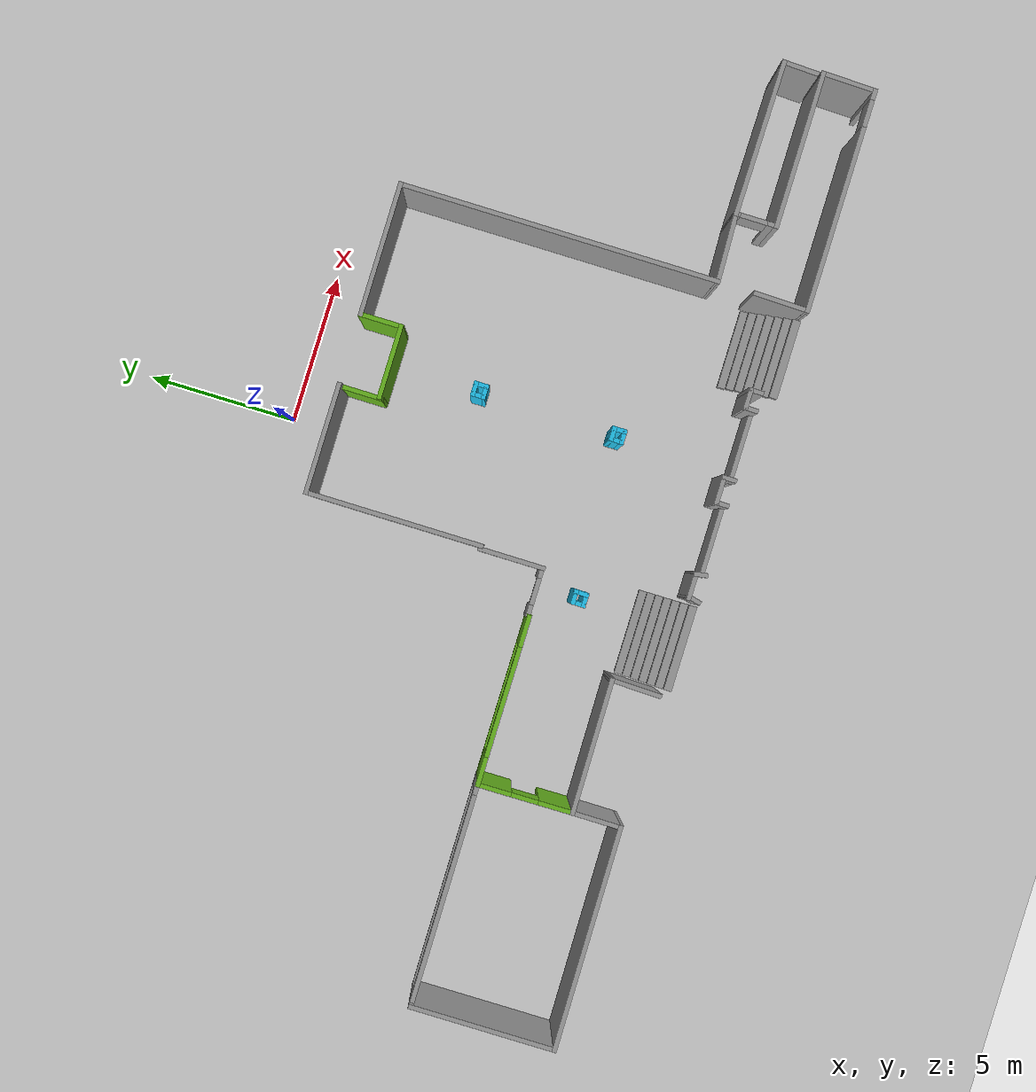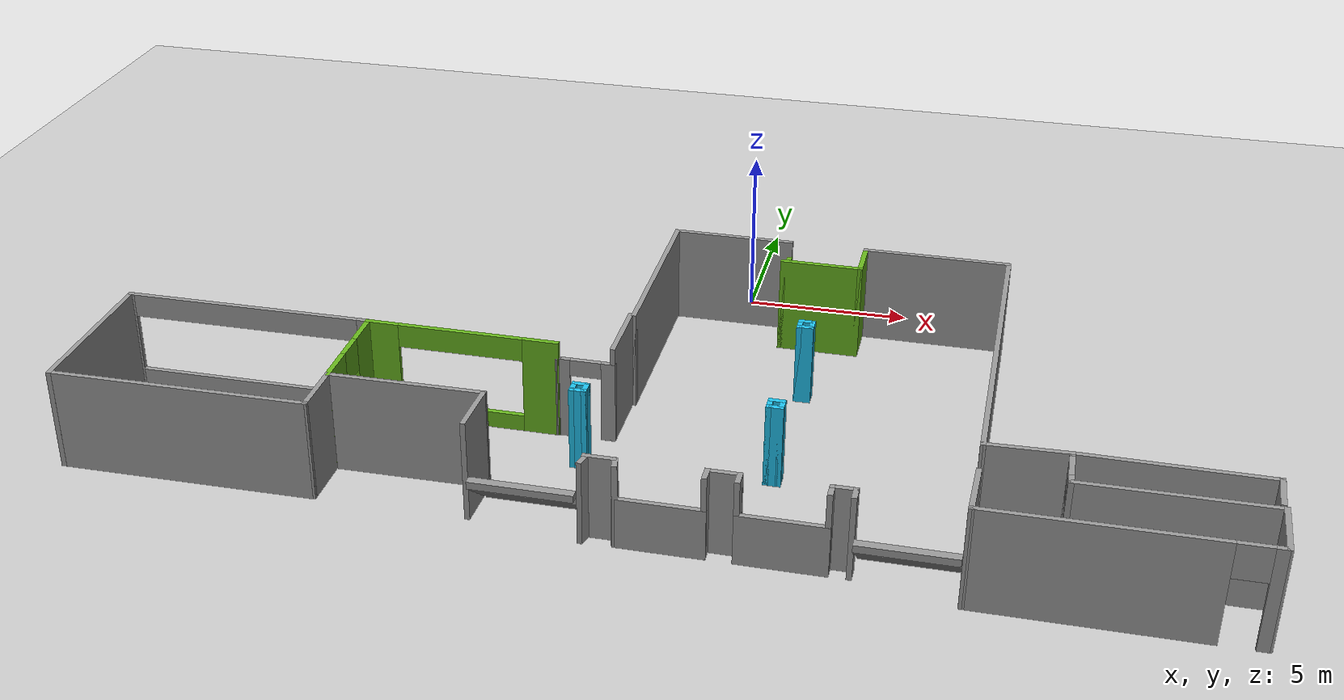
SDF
<sdf version="1.6">
 <world name="default">
  <model name="ground_plane">
   <static>1</static>
   <link name="link">
    <collision name="collision">
     <geometry><plane><normal>0 0 1</normal><size>100 100</size></plane></geometry>
     <surface><friction><ode><mu>100</mu><mu2>50</mu2></ode></friction></surface>
    </collision>
    <visual name="visual">
     <cast_shadows>0</cast_shadows>
     <geometry><plane><normal>0 0 1</normal><size>100 100</size></plane></geometry>
     <material>
      <script><uri>file://media/materials/scripts/gazebo.material</uri><name>Gazebo/Grey</name></script>
     </material>
    </visual>
   </link>
  </model>
  <model name="digilabs">
   <pose>-0.7518 -8.27015 0 0 -0 0</pose>
   <link name="Stairs_4">
    <visual name="Stairs_4_Visual_0">
     <pose>-2.7433 -4.67133 0.106857 0 -0 0</pose>
     <geometry><box><size>2.91 0.265714 0.213714</size></box></geometry>
     <material>
      <script><uri>file://media/materials/scripts/gazebo.material</uri><name>Gazebo/Grey</name></script>
      <ambient>1 1 1 1</ambient>
     </material>
     <meta><layer>0</layer></meta>
    </visual>
    <collision name="Stairs_4_Collision_0">
     <geometry><box><size>2.91 0.265714 0.213714</size></box></geometry>
     <pose>-2.7433 -4.67133 0.106857 0 -0 0</pose>
    </collision>
    <visual name="Stairs_4_Visual_1">
     <pose>-2.7433 -4.93704 0.320571 0 -0 0</pose>
     <geometry><box><size>2.91 0.265714 0.213714</size></box></geometry>
     <material>
      <script><uri>file://media/materials/scripts/gazebo.material</uri><name>Gazebo/Grey</name></script>
      <ambient>1 1 1 1</ambient>
     </material>
     <meta><layer>0</layer></meta>
    </visual>
    <collision name="Stairs_4_Collision_1">
     <geometry><box><size>2.91 0.265714 0.213714</size></box></geometry>
     <pose>-2.7433 -4.93704 0.320571 0 -0 0</pose>
    </collision>
    <visual name="Stairs_4_Visual_2">
     <pose>-2.7433 -5.20275 0.534286 0 -0 0</pose>
     <geometry><box><size>2.91 0.265714 0.213714</size></box></geometry>
     <material>
      <script><uri>file://media/materials/scripts/gazebo.material</uri><name>Gazebo/Grey</name></script>
      <ambient>1 1 1 1</ambient>
     </material>
     <meta><layer>0</layer></meta>
    </visual>
    <collision name="Stairs_4_Collision_2">
     <geometry><box><size>2.91 0.265714 0.213714</size></box></geometry>
     <pose>-2.7433 -5.20275 0.534286 0 -0 0</pose>
    </collision>
    <visual name="Stairs_4_Visual_3">
     <pose>-2.7433 -5.46847 0.748 0 -0 0</pose>
     <geometry><box><size>2.91 0.265714 0.213714</size></box></geometry>
     <material>
      <script><uri>file://media/materials/scripts/gazebo.material</uri><name>Gazebo/Grey</name></script>
      <ambient>1 1 1 1</ambient>
     </material>
     <meta><layer>0</layer></meta>
    </visual>
    <collision name="Stairs_4_Collision_3">
     <geometry><box><size>2.91 0.265714 0.213714</size></box></geometry>
     <pose>-2.7433 -5.46847 0.748 0 -0 0</pose>
    </collision>
    <visual name="Stairs_4_Visual_4">
     <pose>-2.7433 -5.73418 0.961714 0 -0 0</pose>
     <geometry><box><size>2.91 0.265714 0.213714</size></box></geometry>
     <material>
      <script><uri>file://media/materials/scripts/gazebo.material</uri><name>Gazebo/Grey</name></script>
      <ambient>1 1 1 1</ambient>
     </material>
     <meta><layer>0</layer></meta>
    </visual>
    <collision name="Stairs_4_Collision_4">
     <geometry><box><size>2.91 0.265714 0.213714</size></box></geometry>
     <pose>-2.7433 -5.73418 0.961714 0 -0 0</pose>
    </collision>
    <visual name="Stairs_4_Visual_5">
     <pose>-2.7433 -5.9999 1.17543 0 -0 0</pose>
     <geometry><box><size>2.91 0.265714 0.213714</size></box></geometry>
     <material>
      <script><uri>file://media/materials/scripts/gazebo.material</uri><name>Gazebo/Grey</name></script>
      <ambient>1 1 1 1</ambient>
     </material>
     <meta><layer>0</layer></meta>
    </visual>
    <collision name="Stairs_4_Collision_5">
     <geometry><box><size>2.91 0.265714 0.213714</size></box></geometry>
     <pose>-2.7433 -5.9999 1.17543 0 -0 0</pose>
    </collision>
    <visual name="Stairs_4_Visual_6">
     <pose>-2.7433 -6.26561 1.38914 0 -0 0</pose>
     <geometry><box><size>2.91 0.265714 0.213714</size></box></geometry>
     <material>
      <script><uri>file://media/materials/scripts/gazebo.material</uri><name>Gazebo/Grey</name></script>
      <ambient>1 1 1 1</ambient>
     </material>
     <meta><layer>0</layer></meta>
    </visual>
    <collision name="Stairs_4_Collision_6">
     <geometry><box><size>2.91 0.265714 0.213714</size></box></geometry>
     <pose>-2.7433 -6.26561 1.38914 0 -0 0</pose>
    </collision>
   </link>
   <link name="Stairs_5">
    <visual name="Stairs_5_Visual_0">
     <pose>7.35413 -5.1708 0.107143 0 -0 0</pose>
     <geometry><box><size>2.688 0.265286 0.214286</size></box></geometry>
     <material>
      <script><uri>file://media/materials/scripts/gazebo.material</uri><name>Gazebo/Grey</name></script>
      <ambient>1 1 1 1</ambient>
     </material>
     <meta><layer>0</layer></meta>
    </visual>
    <collision name="Stairs_5_Collision_0">
     <geometry><box><size>2.688 0.265286 0.214286</size></box></geometry>
     <pose>7.35413 -5.1708 0.107143 0 -0 0</pose>
    </collision>
    <visual name="Stairs_5_Visual_1">
     <pose>7.35413 -5.43608 0.321429 0 -0 0</pose>
     <geometry><box><size>2.688 0.265286 0.214286</size></box></geometry>
     <material>
      <script><uri>file://media/materials/scripts/gazebo.material</uri><name>Gazebo/Grey</name></script>
      <ambient>1 1 1 1</ambient>
     </material>
     <meta><layer>0</layer></meta>
    </visual>
    <collision name="Stairs_5_Collision_1">
     <geometry><box><size>2.688 0.265286 0.214286</size></box></geometry>
     <pose>7.35413 -5.43608 0.321429 0 -0 0</pose>
    </collision>
    <visual name="Stairs_5_Visual_2">
     <pose>7.35413 -5.70137 0.535714 0 -0 0</pose>
     <geometry><box><size>2.688 0.265286 0.214286</size></box></geometry>
     <material>
      <script><uri>file://media/materials/scripts/gazebo.material</uri><name>Gazebo/Grey</name></script>
      <ambient>1 1 1 1</ambient>
     </material>
     <meta><layer>0</layer></meta>
    </visual>
    <collision name="Stairs_5_Collision_2">
     <geometry><box><size>2.688 0.265286 0.214286</size></box></geometry>
     <pose>7.35413 -5.70137 0.535714 0 -0 0</pose>
    </collision>
    <visual name="Stairs_5_Visual_3">
     <pose>7.35413 -5.96665 0.75 0 -0 0</pose>
     <geometry><box><size>2.688 0.265286 0.214286</size></box></geometry>
     <material>
      <script><uri>file://media/materials/scripts/gazebo.material</uri><name>Gazebo/Grey</name></script>
      <ambient>1 1 1 1</ambient>
     </material>
     <meta><layer>0</layer></meta>
    </visual>
    <collision name="Stairs_5_Collision_3">
     <geometry><box><size>2.688 0.265286 0.214286</size></box></geometry>
     <pose>7.35413 -5.96665 0.75 0 -0 0</pose>
    </collision>
    <visual name="Stairs_5_Visual_4">
     <pose>7.35413 -6.23194 0.964286 0 -0 0</pose>
     <geometry><box><size>2.688 0.265286 0.214286</size></box></geometry>
     <material>
      <script><uri>file://media/materials/scripts/gazebo.material</uri><name>Gazebo/Grey</name></script>
      <ambient>1 1 1 1</ambient>
     </material>
     <meta><layer>0</layer></meta>
    </visual>
    <collision name="Stairs_5_Collision_4">
     <geometry><box><size>2.688 0.265286 0.214286</size></box></geometry>
     <pose>7.35413 -6.23194 0.964286 0 -0 0</pose>
    </collision>
    <visual name="Stairs_5_Visual_5">
     <pose>7.35413 -6.49722 1.17857 0 -0 0</pose>
     <geometry><box><size>2.688 0.265286 0.214286</size></box></geometry>
     <material>
      <script><uri>file://media/materials/scripts/gazebo.material</uri><name>Gazebo/Grey</name></script>
      <ambient>1 1 1 1</ambient>
     </material>
     <meta><layer>0</layer></meta>
    </visual>
    <collision name="Stairs_5_Collision_5">
     <geometry><box><size>2.688 0.265286 0.214286</size></box></geometry>
     <pose>7.35413 -6.49722 1.17857 0 -0 0</pose>
    </collision>
    <visual name="Stairs_5_Visual_6">
     <pose>7.35413 -6.76251 1.39286 0 -0 0</pose>
     <geometry><box><size>2.688 0.265286 0.214286</size></box></geometry>
     <material>
      <script><uri>file://media/materials/scripts/gazebo.material</uri><name>Gazebo/Grey</name></script>
      <ambient>1 1 1 1</ambient>
     </material>
     <meta><layer>0</layer></meta>
    </visual>
    <collision name="Stairs_5_Collision_6">
     <geometry><box><size>2.688 0.265286 0.214286</size></box></geometry>
     <pose>7.35413 -6.76251 1.39286 0 -0 0</pose>
    </collision>
   </link>
   <link name="Wall_0">
    <collision name="Wall_0_Collision">
     <geometry><box><size>3.75 0.15 3</size></box></geometry>
     <pose>0 0 1.5 0 -0 0</pose>
    </collision>
    <visual name="Wall_0_Visual">
     <pose>0 0 1.5 0 -0 0</pose>
     <geometry><box><size>3.75 0.15 3</size></box></geometry>
     <material>
      <script><uri>file://media/materials/scripts/gazebo.material</uri><name>Gazebo/Grey</name></script>
      <ambient>1 1 1 1</ambient>
     </material>
     <meta><layer>0</layer></meta>
    </visual>
    <pose>0.3518 6.82015 0 0 -0 0</pose>
   </link>
   <link name="Wall_1">
    <collision name="Wall_1_Collision">
     <geometry><box><size>1.5 0.15 2.5</size></box></geometry>
     <pose>0 0 1.25 0 -0 0</pose>
    </collision>
    <visual name="Wall_1_Visual">
     <pose>0 0 1.25 0 -0 0</pose>
     <geometry><box><size>1.5 0.15 2.5</size></box></geometry>
     <material>
      <script><uri>file://media/materials/scripts/gazebo.material</uri><name>Gazebo/Grey</name></script>
      <ambient>0.403922 0.709804 0.113725 1</ambient>
     </material>
     <meta><layer>0</layer></meta>
    </visual>
    <pose>2.1518 6.14515 0 0 0 -1.5708</pose>
   </link>
   <link name="Wall_10">
    <pose>-2.3482 -1.12985 0 0 -0 3.14159</pose>
    <visual name="Wall_10_Visual_0">
     <pose>-0.667497 0 1.25 0 -0 0</pose>
     <geometry><box><size>0.415005 0.15 2.5</size></box></geometry>
     <material>
      <script><uri>file://media/materials/scripts/gazebo.material</uri><name>Gazebo/Grey</name></script>
      <ambient>1 1 1 1</ambient>
     </material>
     <meta><layer>0</layer></meta>
    </visual>
    <collision name="Wall_10_Collision_0">
     <geometry><box><size>0.415005 0.15 2.5</size></box></geometry>
     <pose>-0.667497 0 1.25 0 -0 0</pose>
    </collision>
    <visual name="Wall_10_Visual_1">
     <pose>0.657503 0 1.25 0 -0 0</pose>
     <geometry><box><size>0.434995 0.15 2.5</size></box></geometry>
     <material>
      <script><uri>file://media/materials/scripts/gazebo.material</uri><name>Gazebo/Grey</name></script>
      <ambient>1 1 1 1</ambient>
     </material>
     <meta><layer>0</layer></meta>
    </visual>
    <collision name="Wall_10_Collision_1">
     <geometry><box><size>0.434995 0.15 2.5</size></box></geometry>
     <pose>0.657503 0 1.25 0 -0 0</pose>
    </collision>
    <visual name="Wall_10_Visual_2">
     <pose>-0.009995 0 2.25 0 -0 0</pose>
     <geometry><box><size>0.9 0.15 0.5</size></box></geometry>
     <material>
      <script><uri>file://media/materials/scripts/gazebo.material</uri><name>Gazebo/Grey</name></script>
      <ambient>1 1 1 1</ambient>
     </material>
     <meta><layer>0</layer></meta>
    </visual>
    <collision name="Wall_10_Collision_2">
     <geometry><box><size>0.9 0.15 0.5</size></box></geometry>
     <pose>-0.009995 0 2.25 0 -0 0</pose>
    </collision>
   </link>
   <link name="Wall_11">
    <collision name="Wall_11_Collision">
     <geometry><box><size>0.19801 0.15 2.5</size></box></geometry>
     <pose>0 0 1.25 0 -0 0</pose>
    </collision>
    <visual name="Wall_11_Visual">
     <pose>0 0 1.25 0 -0 0</pose>
     <geometry><box><size>0.19801 0.15 2.5</size></box></geometry>
     <material>
      <script><uri>file://media/materials/scripts/gazebo.material</uri><name>Gazebo/Grey</name></script>
      <ambient>1 1 1 1</ambient>
     </material>
     <meta><layer>0</layer></meta>
    </visual>
    <pose>-3.1622 -1.14935 0 0 0 -2.19347</pose>
   </link>
   <link name="Wall_12">
    <pose>-5.9762 -1.16885 0 0 -0 3.14159</pose>
    <visual name="Wall_12_Visual_0">
     <pose>-2.34011 0 1.5 0 -0 0</pose>
     <geometry><box><size>1.06978 0.15 3</size></box></geometry>
     <material>
      <script><uri>file://media/materials/scripts/gazebo.material</uri><name>Gazebo/Grey</name></script>
      <ambient>0.403922 0.709804 0.113725 1</ambient>
     </material>
     <meta><layer>0</layer></meta>
    </visual>
    <collision name="Wall_12_Collision_0">
     <geometry><box><size>1.06978 0.15 3</size></box></geometry>
     <pose>-2.34011 0 1.5 0 -0 0</pose>
    </collision>
    <visual name="Wall_12_Visual_1">
     <pose>0.534892 0 0.25 0 -0 0</pose>
     <geometry><box><size>4.68022 0.15 0.5</size></box></geometry>
     <material>
      <script><uri>file://media/materials/scripts/gazebo.material</uri><name>Gazebo/Grey</name></script>
      <ambient>0.403922 0.709804 0.113725 1</ambient>
     </material>
     <meta><layer>0</layer></meta>
    </visual>
    <collision name="Wall_12_Collision_1">
     <geometry><box><size>4.68022 0.15 0.5</size></box></geometry>
     <pose>0.534892 0 0.25 0 -0 0</pose>
    </collision>
    <visual name="Wall_12_Visual_2">
     <pose>2.37639 0 1.75 0 -0 0</pose>
     <geometry><box><size>0.997216 0.15 2.5</size></box></geometry>
     <material>
      <script><uri>file://media/materials/scripts/gazebo.material</uri><name>Gazebo/Grey</name></script>
      <ambient>0.403922 0.709804 0.113725 1</ambient>
     </material>
     <meta><layer>0</layer></meta>
    </visual>
    <collision name="Wall_12_Collision_2">
     <geometry><box><size>0.997216 0.15 2.5</size></box></geometry>
     <pose>2.37639 0 1.75 0 -0 0</pose>
    </collision>
    <visual name="Wall_12_Visual_3">
     <pose>0.036284 0 2.65 0 -0 0</pose>
     <geometry><box><size>3.683 0.15 0.7</size></box></geometry>
     <material>
      <script><uri>file://media/materials/scripts/gazebo.material</uri><name>Gazebo/Grey</name></script>
      <ambient>0.403922 0.709804 0.113725 1</ambient>
     </material>
     <meta><layer>0</layer></meta>
    </visual>
    <collision name="Wall_12_Collision_3">
     <geometry><box><size>3.683 0.15 0.7</size></box></geometry>
     <pose>0.036284 0 2.65 0 -0 0</pose>
    </collision>
   </link>
   <link name="Wall_13">
    <pose>-8.7622 -2.74935 0 0 0 -1.56194</pose>
    <visual name="Wall_13_Visual_0">
     <pose>-1.06319 0 1.5 0 -0 0</pose>
     <geometry><box><size>1.18475 0.15 3</size></box></geometry>
     <material>
      <script><uri>file://media/materials/scripts/gazebo.material</uri><name>Gazebo/Grey</name></script>
      <ambient>0.403922 0.709804 0.113725 1</ambient>
     </material>
     <meta><layer>0</layer></meta>
    </visual>
    <collision name="Wall_13_Collision_0">
     <geometry><box><size>1.18475 0.15 3</size></box></geometry>
     <pose>-1.06319 0 1.5 0 -0 0</pose>
    </collision>
    <visual name="Wall_13_Visual_1">
     <pose>1.04238 0 1.5 0 -0 0</pose>
     <geometry><box><size>1.22637 0.15 3</size></box></geometry>
     <material>
      <script><uri>file://media/materials/scripts/gazebo.material</uri><name>Gazebo/Grey</name></script>
      <ambient>0.403922 0.709804 0.113725 1</ambient>
     </material>
     <meta><layer>0</layer></meta>
    </visual>
    <collision name="Wall_13_Collision_1">
     <geometry><box><size>1.22637 0.15 3</size></box></geometry>
     <pose>1.04238 0 1.5 0 -0 0</pose>
    </collision>
    <visual name="Wall_13_Visual_2">
     <pose>-0.020809 0 2.5 0 -0 0</pose>
     <geometry><box><size>0.9 0.15 1</size></box></geometry>
     <material>
      <script><uri>file://media/materials/scripts/gazebo.material</uri><name>Gazebo/Grey</name></script>
      <ambient>0.403922 0.709804 0.113725 1</ambient>
     </material>
     <meta><layer>0</layer></meta>
    </visual>
    <collision name="Wall_13_Collision_2">
     <geometry><box><size>0.9 0.15 1</size></box></geometry>
     <pose>-0.020809 0 2.5 0 -0 0</pose>
    </collision>
   </link>
   <link name="Wall_14">
    <collision name="Wall_14_Collision">
     <geometry><box><size>4.57641 0.15 3</size></box></geometry>
     <pose>0 0 1.5 0 -0 0</pose>
    </collision>
    <visual name="Wall_14_Visual">
     <pose>0 0 1.5 0 -0 0</pose>
     <geometry><box><size>4.57641 0.15 3</size></box></geometry>
     <material>
      <script><uri>file://media/materials/scripts/gazebo.material</uri><name>Gazebo/Grey</name></script>
      <ambient>1 1 1 1</ambient>
     </material>
     <meta><layer>0</layer></meta>
    </visual>
    <pose>-6.5352 -4.30885 0 0 -0 0.009489</pose>
   </link>
   <link name="Wall_15">
    <collision name="Wall_15_Collision">
     <geometry><box><size>1.75 0.15 3</size></box></geometry>
     <pose>0 0 1.5 0 -0 0</pose>
    </collision>
    <visual name="Wall_15_Visual">
     <pose>0 0 1.5 0 -0 0</pose>
     <geometry><box><size>1.75 0.15 3</size></box></geometry>
     <material>
      <script><uri>file://media/materials/scripts/gazebo.material</uri><name>Gazebo/Grey</name></script>
      <ambient>1 1 1 1</ambient>
     </material>
     <meta><layer>0</layer></meta>
    </visual>
    <pose>-4.3432 -5.08785 0 0 0 -1.59704</pose>
   </link>
   <link name="Wall_18">
    <collision name="Wall_18_Collision">
     <geometry><box><size>1.88877 0.15 3</size></box></geometry>
     <pose>0 0 1.5 0 -0 0</pose>
    </collision>
    <visual name="Wall_18_Visual">
     <pose>0 0 1.5 0 -0 0</pose>
     <geometry><box><size>1.88877 0.15 3</size></box></geometry>
     <material>
      <script><uri>file://media/materials/scripts/gazebo.material</uri><name>Gazebo/Grey</name></script>
      <ambient>1 1 1 1</ambient>
     </material>
     <meta><layer>0</layer></meta>
    </visual>
    <pose>8.8143 -5.92335 0 0 0 -1.59667</pose>
   </link>
   <link name="Wall_19">
    <pose>12.4668 -6.79285 0 0 -0 0</pose>
    <visual name="Wall_19_Visual_0">
     <pose>-0.640973 0 1.5 0 -0 0</pose>
     <geometry><box><size>6.21805 0.15 3</size></box></geometry>
     <material>
      <script><uri>file://media/materials/scripts/gazebo.material</uri><name>Gazebo/Grey</name></script>
      <ambient>1 1 1 1</ambient>
     </material>
     <meta><layer>0</layer></meta>
    </visual>
    <collision name="Wall_19_Collision_0">
     <geometry><box><size>6.21805 0.15 3</size></box></geometry>
     <pose>-0.640973 0 1.5 0 -0 0</pose>
    </collision>
    <visual name="Wall_19_Visual_1">
     <pose>3.55903 0 1.5 0 -0 0</pose>
     <geometry><box><size>0.381945 0.15 3</size></box></geometry>
     <material>
      <script><uri>file://media/materials/scripts/gazebo.material</uri><name>Gazebo/Grey</name></script>
      <ambient>1 1 1 1</ambient>
     </material>
     <meta><layer>0</layer></meta>
    </visual>
    <collision name="Wall_19_Collision_1">
     <geometry><box><size>0.381945 0.15 3</size></box></geometry>
     <pose>3.55903 0 1.5 0 -0 0</pose>
    </collision>
    <visual name="Wall_19_Visual_2">
     <pose>2.91805 0 2.5 0 -0 0</pose>
     <geometry><box><size>0.9 0.15 1</size></box></geometry>
     <material>
      <script><uri>file://media/materials/scripts/gazebo.material</uri><name>Gazebo/Grey</name></script>
      <ambient>1 1 1 1</ambient>
     </material>
     <meta><layer>0</layer></meta>
    </visual>
    <collision name="Wall_19_Collision_2">
     <geometry><box><size>0.9 0.15 1</size></box></geometry>
     <pose>2.91805 0 2.5 0 -0 0</pose>
    </collision>
   </link>
   <link name="Wall_2">
    <collision name="Wall_2_Collision">
     <geometry><box><size>2.5 0.15 3</size></box></geometry>
     <pose>0 0 1.5 0 -0 0</pose>
    </collision>
    <visual name="Wall_2_Visual">
     <pose>0 0 1.5 0 -0 0</pose>
     <geometry><box><size>2.5 0.15 3</size></box></geometry>
     <material>
      <script><uri>file://media/materials/scripts/gazebo.material</uri><name>Gazebo/Grey</name></script>
      <ambient>0.403922 0.709804 0.113725 1</ambient>
     </material>
     <meta><layer>0</layer></meta>
    </visual>
    <pose>3.3268 5.47015 0 0 -0 0</pose>
   </link>
   <link name="Wall_20">
    <collision name="Wall_20_Collision">
     <geometry><box><size>1.88877 0.15 3</size></box></geometry>
     <pose>0 0 1.5 0 -0 0</pose>
    </collision>
    <visual name="Wall_20_Visual">
     <pose>0 0 1.5 0 -0 0</pose>
     <geometry><box><size>1.88877 0.15 3</size></box></geometry>
     <material>
      <script><uri>file://media/materials/scripts/gazebo.material</uri><name>Gazebo/Grey</name></script>
      <ambient>1 1 1 1</ambient>
     </material>
     <meta><layer>0</layer></meta>
    </visual>
    <pose>16.1643 -5.92335 0 0 -0 1.54493</pose>
   </link>
   <link name="Wall_21">
    <collision name="Wall_21_Collision">
     <geometry><box><size>5.25 0.15 3</size></box></geometry>
     <pose>0 0 1.5 0 -0 0</pose>
    </collision>
    <visual name="Wall_21_Visual">
     <pose>0 0 1.5 0 -0 0</pose>
     <geometry><box><size>5.25 0.15 3</size></box></geometry>
     <material>
      <script><uri>file://media/materials/scripts/gazebo.material</uri><name>Gazebo/Grey</name></script>
      <ambient>1 1 1 1</ambient>
     </material>
     <meta><layer>0</layer></meta>
    </visual>
    <pose>13.6368 -5.05385 0 0 -0 3.14159</pose>
   </link>
   <link name="Wall_22">
    <pose>11.0868 -4.37885 0 0 -0 1.5708</pose>
    <visual name="Wall_22_Visual_0">
     <pose>-0.560049 0 1.5 0 -0 0</pose>
     <geometry><box><size>0.379903 0.15 3</size></box></geometry>
     <material>
      <script><uri>file://media/materials/scripts/gazebo.material</uri><name>Gazebo/Grey</name></script>
      <ambient>1 1 1 1</ambient>
     </material>
     <meta><layer>0</layer></meta>
    </visual>
    <collision name="Wall_22_Collision_0">
     <geometry><box><size>0.379903 0.15 3</size></box></geometry>
     <pose>-0.560049 0 1.5 0 -0 0</pose>
    </collision>
    <visual name="Wall_22_Visual_1">
     <pose>0.639951 0 1.5 0 -0 0</pose>
     <geometry><box><size>0.220097 0.15 3</size></box></geometry>
     <material>
      <script><uri>file://media/materials/scripts/gazebo.material</uri><name>Gazebo/Grey</name></script>
      <ambient>1 1 1 1</ambient>
     </material>
     <meta><layer>0</layer></meta>
    </visual>
    <collision name="Wall_22_Collision_1">
     <geometry><box><size>0.220097 0.15 3</size></box></geometry>
     <pose>0.639951 0 1.5 0 -0 0</pose>
    </collision>
    <visual name="Wall_22_Visual_2">
     <pose>0.079903 0 2.5 0 -0 0</pose>
     <geometry><box><size>0.9 0.15 1</size></box></geometry>
     <material>
      <script><uri>file://media/materials/scripts/gazebo.material</uri><name>Gazebo/Grey</name></script>
      <ambient>1 1 1 1</ambient>
     </material>
     <meta><layer>0</layer></meta>
    </visual>
    <collision name="Wall_22_Collision_2">
     <geometry><box><size>0.9 0.15 1</size></box></geometry>
     <pose>0.079903 0 2.5 0 -0 0</pose>
    </collision>
   </link>
   <link name="Wall_23">
    <collision name="Wall_23_Collision">
     <geometry><box><size>5.22834 0.15 3</size></box></geometry>
     <pose>0 0 1.5 0 -0 0</pose>
    </collision>
    <visual name="Wall_23_Visual">
     <pose>0 0 1.5 0 -0 0</pose>
     <geometry><box><size>5.22834 0.15 3</size></box></geometry>
     <material>
      <script><uri>file://media/materials/scripts/gazebo.material</uri><name>Gazebo/Grey</name></script>
      <ambient>1 1 1 1</ambient>
     </material>
     <meta><layer>0</layer></meta>
    </visual>
    <pose>13.6258 -3.72685 0 0 0 -0.009058</pose>
   </link>
   <link name="Wall_24">
    <collision name="Wall_24_Collision">
     <geometry><box><size>1.25 0.15 3</size></box></geometry>
     <pose>0 0 1.5 0 -0 0</pose>
    </collision>
    <visual name="Wall_24_Visual">
     <pose>0 0 1.5 0 -0 0</pose>
     <geometry><box><size>1.25 0.15 3</size></box></geometry>
     <material>
      <script><uri>file://media/materials/scripts/gazebo.material</uri><name>Gazebo/Grey</name></script>
      <ambient>1 1 1 1</ambient>
     </material>
     <meta><layer>0</layer></meta>
    </visual>
    <pose>16.1423 -4.29985 0 0 0 -1.61168</pose>
   </link>
   <link name="Wall_26">
    <collision name="Wall_26_Collision">
     <geometry><box><size>2.38646 0.15 3</size></box></geometry>
     <pose>0 0 1.5 0 -0 0</pose>
    </collision>
    <visual name="Wall_26_Visual">
     <pose>0 0 1.5 0 -0 0</pose>
     <geometry><box><size>2.38646 0.15 3</size></box></geometry>
     <material>
      <script><uri>file://media/materials/scripts/gazebo.material</uri><name>Gazebo/Grey</name></script>
      <ambient>1 1 1 1</ambient>
     </material>
     <meta><layer>0</layer></meta>
    </visual>
    <pose>9.9693 -3.74185 0 0 0 -3.1076</pose>
   </link>
   <link name="Wall_28">
    <collision name="Wall_28_Collision">
     <geometry><box><size>0.75 0.15 2.5</size></box></geometry>
     <pose>0 0 1.25 0 -0 0</pose>
    </collision>
    <visual name="Wall_28_Visual">
     <pose>0 0 1.25 0 -0 0</pose>
     <geometry><box><size>0.75 0.15 2.5</size></box></geometry>
     <material>
      <script><uri>file://media/materials/scripts/gazebo.material</uri><name>Gazebo/Grey</name></script>
      <ambient>1 1 1 1</ambient>
     </material>
     <meta><layer>0</layer></meta>
    </visual>
    <pose>5.6169 -5.8754 0 0 -0 3.14159</pose>
   </link>
   <link name="Wall_3">
    <collision name="Wall_3_Collision">
     <geometry><box><size>1.5 0.15 3</size></box></geometry>
     <pose>0 0 1.5 0 -0 0</pose>
    </collision>
    <visual name="Wall_3_Visual">
     <pose>0 0 1.5 0 -0 0</pose>
     <geometry><box><size>1.5 0.15 3</size></box></geometry>
     <material>
      <script><uri>file://media/materials/scripts/gazebo.material</uri><name>Gazebo/Grey</name></script>
      <ambient>0.403922 0.709804 0.113725 1</ambient>
     </material>
     <meta><layer>0</layer></meta>
    </visual>
    <pose>4.5018 6.14515 0 0 -0 1.5708</pose>
   </link>
   <link name="Wall_4">
    <collision name="Wall_4_Collision">
     <geometry><box><size>4.5 0.15 3</size></box></geometry>
     <pose>0 0 1.5 0 -0 0</pose>
    </collision>
    <visual name="Wall_4_Visual">
     <pose>0 0 1.5 0 -0 0</pose>
     <geometry><box><size>4.5 0.15 3</size></box></geometry>
     <material>
      <script><uri>file://media/materials/scripts/gazebo.material</uri><name>Gazebo/Grey</name></script>
      <ambient>1 1 1 1</ambient>
     </material>
     <meta><layer>0</layer></meta>
    </visual>
    <pose>6.6768 6.82015 0 0 -0 0</pose>
   </link>
   <link name="Wall_42">
    <collision name="Wall_42_Collision">
     <geometry><box><size>0.5 0.15 2.5</size></box></geometry>
     <pose>0 0 1.25 0 -0 0</pose>
    </collision>
    <visual name="Wall_42_Visual">
     <pose>0 0 1.25 0 -0 0</pose>
     <geometry><box><size>0.5 0.15 2.5</size></box></geometry>
     <material>
      <script><uri>file://media/materials/scripts/gazebo.material</uri><name>Gazebo/Grey</name></script>
      <ambient>0.121569 0.764706 0.92549 1</ambient>
     </material>
     <meta><layer>0</layer></meta>
    </visual>
    <pose>3.34428 2.66264 0 0 -0 0</pose>
   </link>
   <link name="Wall_43">
    <collision name="Wall_43_Collision">
     <geometry><box><size>0.5 0.15 2.5</size></box></geometry>
     <pose>0 0 1.25 0 -0 0</pose>
    </collision>
    <visual name="Wall_43_Visual">
     <pose>0 0 1.25 0 -0 0</pose>
     <geometry><box><size>0.5 0.15 2.5</size></box></geometry>
     <material>
      <script><uri>file://media/materials/scripts/gazebo.material</uri><name>Gazebo/Grey</name></script>
      <ambient>0.12549 0.764706 0.941176 1</ambient>
     </material>
     <meta><layer>0</layer></meta>
    </visual>
    <pose>3.51928 2.48764 0 0 0 -1.5708</pose>
   </link>
   <link name="Wall_44">
    <collision name="Wall_44_Collision">
     <geometry><box><size>0.5 0.15 2.5</size></box></geometry>
     <pose>0 0 1.25 0 -0 0</pose>
    </collision>
    <visual name="Wall_44_Visual">
     <pose>0 0 1.25 0 -0 0</pose>
     <geometry><box><size>0.5 0.15 2.5</size></box></geometry>
     <material>
      <script><uri>file://media/materials/scripts/gazebo.material</uri><name>Gazebo/Grey</name></script>
      <ambient>0.12549 0.764706 0.941176 1</ambient>
     </material>
     <meta><layer>0</layer></meta>
    </visual>
    <pose>3.34428 2.31264 0 0 -0 3.14159</pose>
   </link>
   <link name="Wall_45">
    <collision name="Wall_45_Collision">
     <geometry><box><size>0.5 0.15 2.5</size></box></geometry>
     <pose>0 0 1.25 0 -0 0</pose>
    </collision>
    <visual name="Wall_45_Visual">
     <pose>0 0 1.25 0 -0 0</pose>
     <geometry><box><size>0.5 0.15 2.5</size></box></geometry>
     <material>
      <script><uri>file://media/materials/scripts/gazebo.material</uri><name>Gazebo/Grey</name></script>
      <ambient>0.12549 0.764706 0.941176 1</ambient>
     </material>
     <meta><layer>0</layer></meta>
    </visual>
    <pose>3.16928 2.48764 0 0 -0 1.5708</pose>
   </link>
   <link name="Wall_47">
    <collision name="Wall_47_Collision">
     <geometry><box><size>0.5 0.15 2.5</size></box></geometry>
     <pose>0 0 1.25 0 -0 0</pose>
    </collision>
    <visual name="Wall_47_Visual">
     <pose>0 0 1.25 0 -0 0</pose>
     <geometry><box><size>0.5 0.15 2.5</size></box></geometry>
     <material>
      <script><uri>file://media/materials/scripts/gazebo.material</uri><name>Gazebo/Grey</name></script>
      <ambient>0.121569 0.764706 0.92549 1</ambient>
     </material>
     <meta><layer>0</layer></meta>
    </visual>
    <pose>3.25948 -2.02947 0 0 -0 0</pose>
   </link>
   <link name="Wall_48">
    <collision name="Wall_48_Collision">
     <geometry><box><size>0.5 0.15 2.5</size></box></geometry>
     <pose>0 0 1.25 0 -0 0</pose>
    </collision>
    <visual name="Wall_48_Visual">
     <pose>0 0 1.25 0 -0 0</pose>
     <geometry><box><size>0.5 0.15 2.5</size></box></geometry>
     <material>
      <script><uri>file://media/materials/scripts/gazebo.material</uri><name>Gazebo/Grey</name></script>
      <ambient>0.12549 0.764706 0.941176 1</ambient>
     </material>
     <meta><layer>0</layer></meta>
    </visual>
    <pose>3.43448 -2.20447 0 0 0 -1.5708</pose>
   </link>
   <link name="Wall_49">
    <collision name="Wall_49_Collision">
     <geometry><box><size>0.5 0.15 2.5</size></box></geometry>
     <pose>0 0 1.25 0 -0 0</pose>
    </collision>
    <visual name="Wall_49_Visual">
     <pose>0 0 1.25 0 -0 0</pose>
     <geometry><box><size>0.5 0.15 2.5</size></box></geometry>
     <material>
      <script><uri>file://media/materials/scripts/gazebo.material</uri><name>Gazebo/Grey</name></script>
      <ambient>0.12549 0.764706 0.941176 1</ambient>
     </material>
     <meta><layer>0</layer></meta>
    </visual>
    <pose>3.25948 -2.37947 0 0 -0 3.14159</pose>
   </link>
   <link name="Wall_5">
    <collision name="Wall_5_Collision">
     <geometry><box><size>10.75 0.15 3</size></box></geometry>
     <pose>0 0 1.5 0 -0 0</pose>
    </collision>
    <visual name="Wall_5_Visual">
     <pose>0 0 1.5 0 -0 0</pose>
     <geometry><box><size>10.75 0.15 3</size></box></geometry>
     <material>
      <script><uri>file://media/materials/scripts/gazebo.material</uri><name>Gazebo/Grey</name></script>
      <ambient>1 1 1 1</ambient>
     </material>
     <meta><layer>0</layer></meta>
    </visual>
    <pose>8.8518 1.52015 0 0 0 -1.5708</pose>
   </link>
   <link name="Wall_50">
    <collision name="Wall_50_Collision">
     <geometry><box><size>0.5 0.15 2.5</size></box></geometry>
     <pose>0 0 1.25 0 -0 0</pose>
    </collision>
    <visual name="Wall_50_Visual">
     <pose>0 0 1.25 0 -0 0</pose>
     <geometry><box><size>0.5 0.15 2.5</size></box></geometry>
     <material>
      <script><uri>file://media/materials/scripts/gazebo.material</uri><name>Gazebo/Grey</name></script>
      <ambient>0.121569 0.764706 0.92549 1</ambient>
     </material>
     <meta><layer>0</layer></meta>
    </visual>
    <pose>3.08448 -2.20447 0 0 -0 1.5708</pose>
   </link>
   <link name="Wall_52">
    <collision name="Wall_52_Collision">
     <geometry><box><size>0.5 0.15 2.5</size></box></geometry>
     <pose>0 0 1.25 0 -0 0</pose>
    </collision>
    <visual name="Wall_52_Visual">
     <pose>0 0 1.25 0 -0 0</pose>
     <geometry><box><size>0.5 0.15 2.5</size></box></geometry>
     <material>
      <script><uri>file://media/materials/scripts/gazebo.material</uri><name>Gazebo/Grey</name></script>
      <ambient>0.121569 0.764706 0.92549 1</ambient>
     </material>
     <meta><layer>0</layer></meta>
    </visual>
    <pose>-2.13927 -2.39692 0 0 -0 0</pose>
   </link>
   <link name="Wall_53">
    <collision name="Wall_53_Collision">
     <geometry><box><size>0.5 0.15 2.5</size></box></geometry>
     <pose>0 0 1.25 0 -0 0</pose>
    </collision>
    <visual name="Wall_53_Visual">
     <pose>0 0 1.25 0 -0 0</pose>
     <geometry><box><size>0.5 0.15 2.5</size></box></geometry>
     <material>
      <script><uri>file://media/materials/scripts/gazebo.material</uri><name>Gazebo/Grey</name></script>
      <ambient>0.12549 0.764706 0.941176 1</ambient>
     </material>
     <meta><layer>0</layer></meta>
    </visual>
    <pose>-1.96427 -2.57192 0 0 0 -1.5708</pose>
   </link>
   <link name="Wall_54">
    <collision name="Wall_54_Collision">
     <geometry><box><size>0.5 0.15 2.5</size></box></geometry>
     <pose>0 0 1.25 0 -0 0</pose>
    </collision>
    <visual name="Wall_54_Visual">
     <pose>0 0 1.25 0 -0 0</pose>
     <geometry><box><size>0.5 0.15 2.5</size></box></geometry>
     <material>
      <script><uri>file://media/materials/scripts/gazebo.material</uri><name>Gazebo/Grey</name></script>
      <ambient>0.12549 0.764706 0.941176 1</ambient>
     </material>
     <meta><layer>0</layer></meta>
    </visual>
    <pose>-2.13927 -2.74692 0 0 -0 3.14159</pose>
   </link>
   <link name="Wall_55">
    <collision name="Wall_55_Collision">
     <geometry><box><size>0.5 0.15 2.5</size></box></geometry>
     <pose>0 0 1.25 0 -0 0</pose>
    </collision>
    <visual name="Wall_55_Visual">
     <pose>0 0 1.25 0 -0 0</pose>
     <geometry><box><size>0.5 0.15 2.5</size></box></geometry>
     <material>
      <script><uri>file://media/materials/scripts/gazebo.material</uri><name>Gazebo/Grey</name></script>
      <ambient>0.121569 0.764706 0.92549 1</ambient>
     </material>
     <meta><layer>0</layer></meta>
    </visual>
    <pose>-2.31427 -2.57192 0 0 -0 1.5708</pose>
   </link>
   <link name="Wall_61">
    <collision name="Wall_61_Collision">
     <geometry><box><size>1.75 0.15 3</size></box></geometry>
     <pose>0 0 1.5 0 -0 0</pose>
    </collision>
    <visual name="Wall_61_Visual">
     <pose>0 0 1.5 0 -0 0</pose>
     <geometry><box><size>1.75 0.15 3</size></box></geometry>
     <material>
      <script><uri>file://media/materials/scripts/gazebo.material</uri><name>Gazebo/Grey</name></script>
      <ambient>1 1 1 1</ambient>
     </material>
     <meta><layer>0</layer></meta>
    </visual>
    <pose>-8.7482 -5.12985 0 0 0 -1.5708</pose>
   </link>
   <link name="Wall_62">
    <collision name="Wall_62_Collision">
     <geometry><box><size>7.56279 0.15 3</size></box></geometry>
     <pose>0 0 1.5 0 -0 0</pose>
    </collision>
    <visual name="Wall_62_Visual">
     <pose>0 0 1.5 0 -0 0</pose>
     <geometry><box><size>7.56279 0.15 3</size></box></geometry>
     <material>
      <script><uri>file://media/materials/scripts/gazebo.material</uri><name>Gazebo/Grey</name></script>
      <ambient>1 1 1 1</ambient>
     </material>
     <meta><layer>0</layer></meta>
    </visual>
    <pose>-12.4542 -5.96235 0 0 0 -3.13282</pose>
   </link>
   <link name="Wall_63">
    <collision name="Wall_63_Collision">
     <geometry><box><size>4.94794 0.15 3</size></box></geometry>
     <pose>0 0 1.5 0 -0 0</pose>
    </collision>
    <visual name="Wall_63_Visual">
     <pose>0 0 1.5 0 -0 0</pose>
     <geometry><box><size>4.94794 0.15 3</size></box></geometry>
     <material>
      <script><uri>file://media/materials/scripts/gazebo.material</uri><name>Gazebo/Grey</name></script>
      <ambient>1 1 1 1</ambient>
     </material>
     <meta><layer>0</layer></meta>
    </visual>
    <pose>-16.1742 -3.59635 0 0 -0 1.57663</pose>
   </link>
   <link name="Wall_64">
    <pose>-12.4822 -1.17885 0 0 -0 0.005127</pose>
    <visual name="Wall_64_Visual_0">
     <pose>-3.67349 0 1.5 0 -0 0</pose>
     <geometry><box><size>0.215363 0.15 3</size></box></geometry>
     <material>
      <script><uri>file://media/materials/scripts/gazebo.material</uri><name>Gazebo/Grey</name></script>
      <ambient>1 1 1 1</ambient>
     </material>
     <meta><layer>0</layer></meta>
    </visual>
    <collision name="Wall_64_Collision_0">
     <geometry><box><size>0.215363 0.15 3</size></box></geometry>
     <pose>-3.67349 0 1.5 0 -0 0</pose>
    </collision>
    <visual name="Wall_64_Visual_1">
     <pose>0.107681 0 0.25 0 -0 0</pose>
     <geometry><box><size>7.34698 0.15 0.5</size></box></geometry>
     <material>
      <script><uri>file://media/materials/scripts/gazebo.material</uri><name>Gazebo/Grey</name></script>
      <ambient>1 1 1 1</ambient>
     </material>
     <meta><layer>0</layer></meta>
    </visual>
    <collision name="Wall_64_Collision_1">
     <geometry><box><size>7.34698 0.15 0.5</size></box></geometry>
     <pose>0.107681 0 0.25 0 -0 0</pose>
    </collision>
    <visual name="Wall_64_Visual_2">
     <pose>3.57468 0 1.75 0 -0 0</pose>
     <geometry><box><size>0.412978 0.15 2.5</size></box></geometry>
     <material>
      <script><uri>file://media/materials/scripts/gazebo.material</uri><name>Gazebo/Grey</name></script>
      <ambient>1 1 1 1</ambient>
     </material>
     <meta><layer>0</layer></meta>
    </visual>
    <collision name="Wall_64_Collision_2">
     <geometry><box><size>0.412978 0.15 2.5</size></box></geometry>
     <pose>3.57468 0 1.75 0 -0 0</pose>
    </collision>
    <visual name="Wall_64_Visual_3">
     <pose>-0.098808 0 2.65 0 -0 0</pose>
     <geometry><box><size>6.934 0.15 0.7</size></box></geometry>
     <material>
      <script><uri>file://media/materials/scripts/gazebo.material</uri><name>Gazebo/Grey</name></script>
      <ambient>1 1 1 1</ambient>
     </material>
     <meta><layer>0</layer></meta>
    </visual>
    <collision name="Wall_64_Collision_3">
     <geometry><box><size>6.934 0.15 0.7</size></box></geometry>
     <pose>-0.098808 0 2.65 0 -0 0</pose>
    </collision>
   </link>
   <link name="Wall_67">
    <collision name="Wall_67_Collision">
     <geometry><box><size>0.5 0.15 2.5</size></box></geometry>
     <pose>0 0 1.25 0 -0 0</pose>
    </collision>
    <visual name="Wall_67_Visual">
     <pose>0 0 1.25 0 -0 0</pose>
     <geometry><box><size>0.5 0.15 2.5</size></box></geometry>
     <material>
      <script><uri>file://media/materials/scripts/gazebo.material</uri><name>Gazebo/Grey</name></script>
      <ambient>1 1 1 1</ambient>
     </material>
     <meta><layer>0</layer></meta>
    </visual>
    <pose>5.31685 -6.05062 0 0 0 -1.57108</pose>
   </link>
   <link name="Wall_68">
    <collision name="Wall_68_Collision">
     <geometry><box><size>2.50037 0.15 1.5</size></box></geometry>
     <pose>0 0 0.75 0 -0 0</pose>
    </collision>
    <visual name="Wall_68_Visual">
     <pose>0 0 0.75 0 -0 0</pose>
     <geometry><box><size>2.50037 0.15 1.5</size></box></geometry>
     <material>
      <script><uri>file://media/materials/scripts/gazebo.material</uri><name>Gazebo/Grey</name></script>
      <ambient>1 1 1 1</ambient>
     </material>
     <meta><layer>0</layer></meta>
    </visual>
    <pose>4.1418 -6.22585 0 0 -0 3.14159</pose>
   </link>
   <link name="Wall_7">
    <collision name="Wall_7_Collision">
     <geometry><box><size>6 0.15 3</size></box></geometry>
     <pose>0 0 1.5 0 -0 0</pose>
    </collision>
    <visual name="Wall_7_Visual">
     <pose>0 0 1.5 0 -0 0</pose>
     <geometry><box><size>6 0.15 3</size></box></geometry>
     <material>
      <script><uri>file://media/materials/scripts/gazebo.material</uri><name>Gazebo/Grey</name></script>
      <ambient>1 1 1 1</ambient>
     </material>
     <meta><layer>0</layer></meta>
    </visual>
    <pose>-1.4482 3.89515 0 0 0 -1.5708</pose>
   </link>
   <link name="Wall_75">
    <collision name="Wall_75_Collision">
     <geometry><box><size>0.5 0.15 2.5</size></box></geometry>
     <pose>0 0 1.25 0 -0 0</pose>
    </collision>
    <visual name="Wall_75_Visual">
     <pose>0 0 1.25 0 -0 0</pose>
     <geometry><box><size>0.5 0.15 2.5</size></box></geometry>
     <material>
      <script><uri>file://media/materials/scripts/gazebo.material</uri><name>Gazebo/Grey</name></script>
      <ambient>1 1 1 1</ambient>
     </material>
     <meta><layer>0</layer></meta>
    </visual>
    <pose>2.96685 -6.05062 0 0 -0 1.57051</pose>
   </link>
   <link name="Wall_76">
    <collision name="Wall_76_Collision">
     <geometry><box><size>1 0.15 2.5</size></box></geometry>
     <pose>0 0 1.25 0 -0 0</pose>
    </collision>
    <visual name="Wall_76_Visual">
     <pose>0 0 1.25 0 -0 0</pose>
     <geometry><box><size>1 0.15 2.5</size></box></geometry>
     <material>
      <script><uri>file://media/materials/scripts/gazebo.material</uri><name>Gazebo/Grey</name></script>
      <ambient>1 1 1 1</ambient>
     </material>
     <meta><layer>0</layer></meta>
    </visual>
    <pose>2.5419 -5.8754 0 0 -0 3.14159</pose>
   </link>
   <link name="Wall_77">
    <collision name="Wall_77_Collision">
     <geometry><box><size>0.5 0.15 2.5</size></box></geometry>
     <pose>0 0 1.25 0 -0 0</pose>
    </collision>
    <visual name="Wall_77_Visual">
     <pose>0 0 1.25 0 -0 0</pose>
     <geometry><box><size>0.5 0.15 2.5</size></box></geometry>
     <material>
      <script><uri>file://media/materials/scripts/gazebo.material</uri><name>Gazebo/Grey</name></script>
      <ambient>1 1 1 1</ambient>
     </material>
     <meta><layer>0</layer></meta>
    </visual>
    <pose>2.11685 -6.05062 0 0 0 -1.57108</pose>
   </link>
   <link name="Wall_78">
    <collision name="Wall_78_Collision">
     <geometry><box><size>2.5 0.15 1.5</size></box></geometry>
     <pose>0 0 0.75 0 -0 0</pose>
    </collision>
    <visual name="Wall_78_Visual">
     <pose>0 0 0.75 0 -0 0</pose>
     <geometry><box><size>2.5 0.15 1.5</size></box></geometry>
     <material>
      <script><uri>file://media/materials/scripts/gazebo.material</uri><name>Gazebo/Grey</name></script>
      <ambient>1 1 1 1</ambient>
     </material>
     <meta><layer>0</layer></meta>
    </visual>
    <pose>0.9418 -6.22585 0 0 -0 3.14159</pose>
   </link>
   <link name="Wall_79">
    <collision name="Wall_79_Collision">
     <geometry><box><size>0.457082 0.15 2.5</size></box></geometry>
     <pose>0 0 1.25 0 -0 0</pose>
    </collision>
    <visual name="Wall_79_Visual">
     <pose>0 0 1.25 0 -0 0</pose>
     <geometry><box><size>0.457082 0.15 2.5</size></box></geometry>
     <material>
      <script><uri>file://media/materials/scripts/gazebo.material</uri><name>Gazebo/Grey</name></script>
      <ambient>1 1 1 1</ambient>
     </material>
     <meta><layer>0</layer></meta>
    </visual>
    <pose>-0.257768 -6.07407 0 0 -0 1.73127</pose>
   </link>
   <link name="Wall_8">
    <collision name="Wall_8_Collision">
     <geometry><box><size>0.25 0.15 2.5</size></box></geometry>
     <pose>0 0 1.25 0 -0 0</pose>
    </collision>
    <visual name="Wall_8_Visual">
     <pose>0 0 1.25 0 -0 0</pose>
     <geometry><box><size>0.25 0.15 2.5</size></box></geometry>
     <material>
      <script><uri>file://media/materials/scripts/gazebo.material</uri><name>Gazebo/Grey</name></script>
      <ambient>1 1 1 1</ambient>
     </material>
     <meta><layer>0</layer></meta>
    </visual>
    <pose>-1.4982 0.970152 0 0 -0 3.14159</pose>
   </link>
   <link name="Wall_80">
    <collision name="Wall_80_Collision">
     <geometry><box><size>0.917685 0.15 2.5</size></box></geometry>
     <pose>0 0 1.25 0 -0 0</pose>
    </collision>
    <visual name="Wall_80_Visual">
     <pose>0 0 1.25 0 -0 0</pose>
     <geometry><box><size>0.917685 0.15 2.5</size></box></geometry>
     <material>
      <script><uri>file://media/materials/scripts/gazebo.material</uri><name>Gazebo/Grey</name></script>
      <ambient>1 1 1 1</ambient>
     </material>
     <meta><layer>0</layer></meta>
    </visual>
    <pose>-0.7081 -5.92229 0 0 -0 3.14159</pose>
   </link>
   <link name="Wall_81">
    <collision name="Wall_81_Collision">
     <geometry><box><size>0.509902 0.15 2.5</size></box></geometry>
     <pose>0 0 1.25 0 -0 0</pose>
    </collision>
    <visual name="Wall_81_Visual">
     <pose>0 0 1.25 0 -0 0</pose>
     <geometry><box><size>0.509902 0.15 2.5</size></box></geometry>
     <material>
      <script><uri>file://media/materials/scripts/gazebo.material</uri><name>Gazebo/Grey</name></script>
      <ambient>1 1 1 1</ambient>
     </material>
     <meta><layer>0</layer></meta>
    </visual>
    <pose>-1.09194 -6.09729 0 0 0 -1.80591</pose>
   </link>
   <link name="Wall_83">
    <collision name="Wall_83_Collision">
     <geometry><box><size>0.5 0.15 2.5</size></box></geometry>
     <pose>0 0 1.25 0 -0 0</pose>
    </collision>
    <visual name="Wall_83_Visual">
     <pose>0 0 1.25 0 -0 0</pose>
     <geometry><box><size>0.5 0.15 2.5</size></box></geometry>
     <material>
      <script><uri>file://media/materials/scripts/gazebo.material</uri><name>Gazebo/Grey</name></script>
      <ambient>1 1 1 1</ambient>
     </material>
     <meta><layer>0</layer></meta>
    </visual>
    <pose>5.9169 -6.0504 0 0 0 -1.5708</pose>
   </link>
   <link name="Wall_9">
    <collision name="Wall_9_Collision">
     <geometry><box><size>2.25 0.15 3</size></box></geometry>
     <pose>0 0 1.5 0 -0 0</pose>
    </collision>
    <visual name="Wall_9_Visual">
     <pose>0 0 1.5 0 -0 0</pose>
     <geometry><box><size>2.25 0.15 3</size></box></geometry>
     <material>
      <script><uri>file://media/materials/scripts/gazebo.material</uri><name>Gazebo/Grey</name></script>
      <ambient>1 1 1 1</ambient>
     </material>
     <meta><layer>0</layer></meta>
    </visual>
    <pose>-1.5482 -0.079848 0 0 0 -1.5708</pose>
   </link>
   <static>1</static>
  </model>
 </world>
</sdf>
